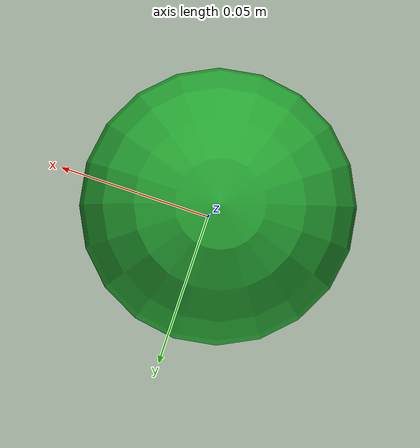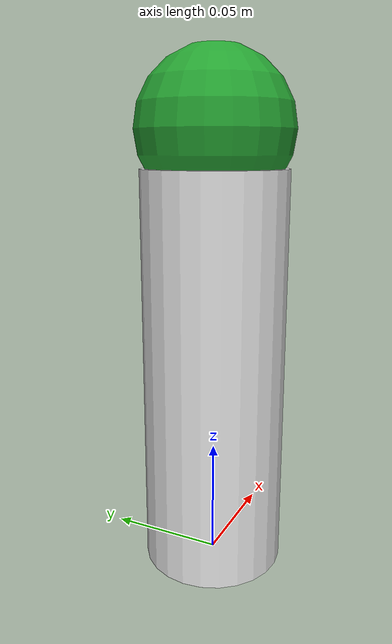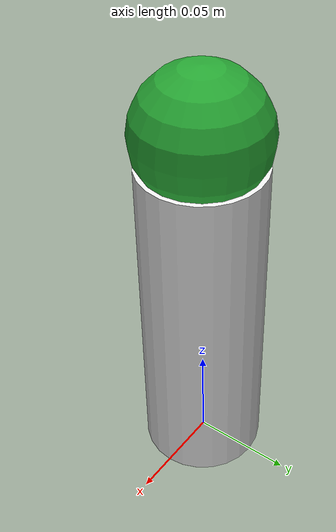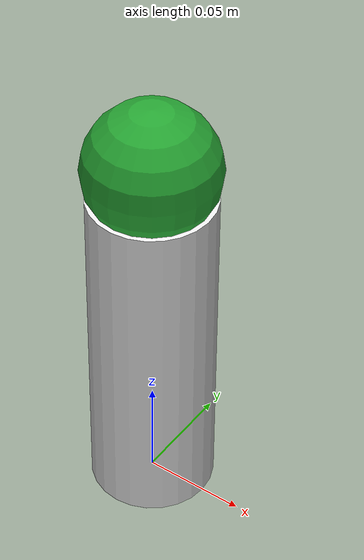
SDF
<?xml version="1.0" ?>
<sdf version="1.6">
	<model name="GreenBall">
		<static>true</static>
		<link name="cylinder">
		    <pose>0 0 0.085 0 0 0</pose>
		    <collision name="culinder_collision">
		        <geometry>
		            <cylinder>
		                <radius>0.03</radius>
						<length>0.17</length>
		            </cylinder>
		        </geometry>
		    </collision>
		    <visual name="culinder_visual">
		        <pose>0 0 0 0 0 0</pose>
		        <geometry>
		            <cylinder>
		                <radius>0.03</radius>
						<length>0.17</length>
		            </cylinder>
		        </geometry>
			<material>
				<script>
					<uri>file://media/materials/scripts/gazebo.material</uri>
					<name>Gazebo/White</name>
				</script>
			</material>
		    </visual>
		</link>
		<link name="ball">
		    <pose>0 0 0.185 0 0 0</pose>
		    <collision name="ball_collision">
		        <geometry>
		            <sphere>
		                <radius>0.032</radius>
		            </sphere>
		        </geometry>
		    </collision>
		    <visual name="ball_visual">
		        <pose>0 0 0 0 0 0</pose>
		        <geometry>
		            <sphere>
		                <radius>0.032</radius>
		            </sphere>
		        </geometry>
			<material>
				<script>
					<uri>file://media/materials/scripts/gazebo.material</uri>
					<name>Gazebo/Green</name>
				</script>
			</material>
		    </visual>
		</link>
	</model>
</sdf>
